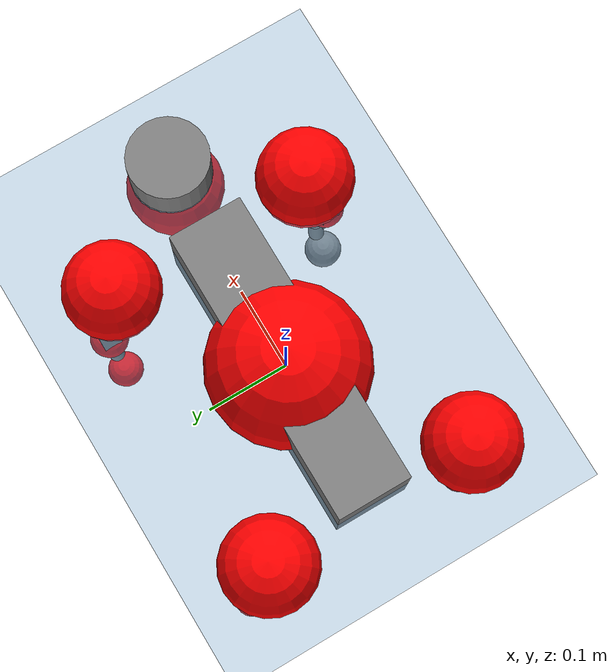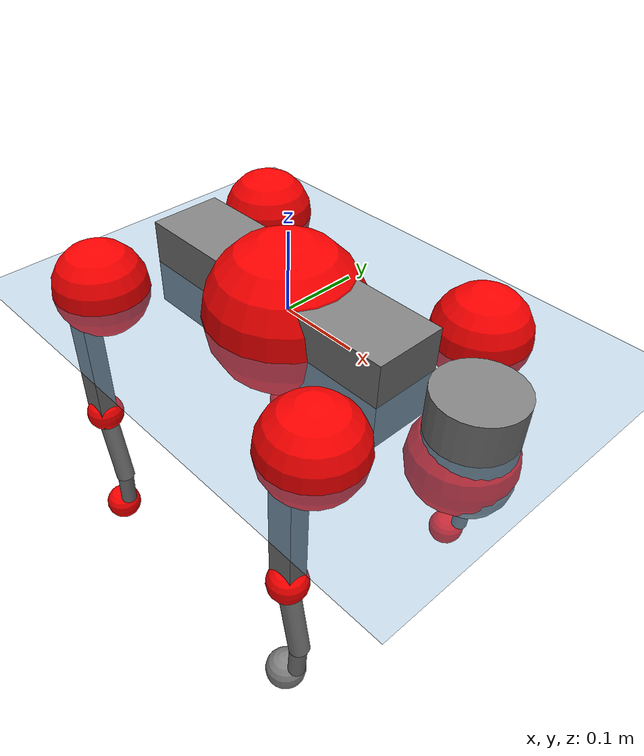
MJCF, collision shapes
<mujoco model="go2">
  <compiler angle="radian" assetdir="assets" balanceinertia="true" inertiafromgeom="false"/>

  <option timestep="0.005" density="1.2" viscosity="2e-05"/>

  <size nkey="1"/>

  <visual>
    <quality shadowsize="8192"/>
    <map shadowclip="0.5"/>
  </visual>

  <default>
    <default class="/">
      <geom contype="0" conaffinity="0" group="1" solref="-1000 -80"/>
      <site size="0.01 0.005 0.005" group="5"/>
      <general forcelimited="true" biastype="affine" gainprm="20" biasprm="0 -20 -0.5"/>
      <default class="go2">
        <joint armature="0.01" damping="0.01" frictionloss="0.2"/>
        <geom condim="1" margin="0.001"/>
        <default class="visual">
          <geom type="mesh" group="2"/>
        </default>
        <default class="collision">
          <geom group="3"/>
          <default class="foot">
            <geom size="0.022 0 0" condim="6" priority="1" friction="0.8 0.02 0.01" solimp="0.015 1 0.022"/>
          </default>
        </default>
        <default class="reward_collision_sphere">
          <geom group="5" rgba="1 0 0 1"/>
        </default>
      </default>
    </default>
  </default>

  <asset>
    <texture type="skybox" colorspace="auto" name="//unnamed_texture_0" builtin="gradient" rgb1="0.95 0.95 0.95" rgb2="0.95 0.95 0.95" width="100" height="600"/>
    <texture type="2d" colorspace="auto" name="texplane" builtin="checker" rgb1="0.345 0.575 0.748" rgb2="0.345 0.575 0.748" markrgb="1 1 1" width="512" height="512"/>
    <material name="MatPlane" class="/" texture="texplane" texuniform="true" texrepeat="2 2" specular="0.9"/>
    <material name="metal" class="/" rgba="0.9 0.95 0.95 1"/>
    <material name="black" class="/" rgba="0 0 0 1"/>
    <material name="white" class="/"/>
    <material name="gray" class="/" rgba="0.671705 0.692426 0.77427 1"/>
    <mesh name="base_0" class="/" file="base_0.obj"/>
    <mesh name="base_1" class="/" file="base_1.obj"/>
    <mesh name="base_2" class="/" file="base_2.obj"/>
    <mesh name="base_3" class="/" file="base_3.obj"/>
    <mesh name="base_4" class="/" file="base_4.obj"/>
    <mesh name="hip_0" class="/" file="hip_0.obj"/>
    <mesh name="hip_1" class="/" file="hip_1.obj"/>
    <mesh name="thigh_0" class="/" file="thigh_0.obj"/>
    <mesh name="thigh_1" class="/" file="thigh_1.obj"/>
    <mesh name="thigh_mirror_0" class="/" file="thigh_mirror_0.obj"/>
    <mesh name="thigh_mirror_1" class="/" file="thigh_mirror_1.obj"/>
    <mesh name="calf_0" class="/" file="calf_0.obj"/>
    <mesh name="calf_1" class="/" file="calf_1.obj"/>
    <mesh name="calf_mirror_0" class="/" file="calf_mirror_0.obj"/>
    <mesh name="calf_mirror_1" class="/" file="calf_mirror_1.obj"/>
    <mesh name="foot" class="/" file="foot.obj"/>
  </asset>

  <worldbody>
    <geom name="floor" class="/" size="100 100 0.125" type="plane" group="0" material="MatPlane"/>
    <light name="toplight_shadow" class="/" pos="0 0 5" dir="0.0990148 0.0990148 -0.990148" type="directional" ambient="0.04 0.04 0.04" diffuse="0.55 0.55 0.55" specular="0.12 0.12 0.12"/>
    <light name="toplight_fill" class="/" pos="0 0 5" dir="0.0990148 0.0990148 -0.990148" type="directional" castshadow="false" ambient="0.04 0.04 0.04" diffuse="0.3 0.3 0.3" specular="0.08 0.08 0.08"/>
    <body name="trunk" childclass="go2" pos="-0.000915858 -0.00270212 -0.00218126" quat="0.999999 0.00036915 0.00091287 -0.000536009">
      <inertial pos="0.019205 0.000769645 -0.00441165" quat="-0.00336258 0.715372 0.00810204 0.698689" mass="6.59598" diaginertia="0.0757547 0.178765 0.0122397"/>
      <joint name="//unnamed_joint_0" type="free" armature="0" damping="0" frictionloss="0"/>
      <geom name="//unnamed_geom_1" class="visual" material="black" mesh="base_0"/>
      <geom name="//unnamed_geom_2" class="visual" material="black" mesh="base_1"/>
      <geom name="//unnamed_geom_3" class="visual" material="black" mesh="base_2"/>
      <geom name="//unnamed_geom_4" class="visual" material="white" mesh="base_3"/>
      <geom name="//unnamed_geom_5" class="visual" material="gray" mesh="base_4"/>
      <geom name="trunk_1" class="collision" size="0.183783 0.0456771 0.0556918" type="box"/>
      <geom name="trunk_2" class="collision" size="0.0488525 0.0439672" pos="0.266583 0 0.00866255" type="cylinder"/>
      <geom name="trunk_3" class="collision" size="0.0459213" pos="0.274066 0 -0.0519753"/>
      <geom name="//unnamed_geom_9" class="reward_collision_sphere" size="0.097705"/>
      <geom name="//unnamed_geom_10" class="reward_collision_sphere" size="0.058623" pos="0.261906 0 -0.0389815"/>
      <site name="imu" pos="-0.0269092 0.00992633 0.0309174" size="0.0097705"/>
      <camera name="track" pos="0 -2.25903 0" quat="0.707107 0.707107 0 0" mode="trackcom"/>
      <camera name="ego_camera" pos="0.291838 0 0.0389815" quat="-0.5 -0.5 0.5 0.5"/>
      <body name="FL_hip" pos="0.177942 0.0497016 0.0031077" quat="1 -0.000335682 -0.000199501 0.000184493">
        <inertial pos="-0.00546818 -0.000257222 -0.00294071" quat="0.49391 0.499731 0.509048 0.497183" mass="0.651621" diaginertia="0.000649489 0.00110266 0.000247769"/>
        <joint name="FL_hip_joint" pos="0 0 0" axis="0.999955 -0.00936476 -0.00141681" range="-1.02908 1.01139" armature="0.0109728" damping="0" frictionloss="0.218636"/>
        <geom name="//unnamed_geom_11" class="visual" material="metal" mesh="hip_0"/>
        <geom name="//unnamed_geom_12" class="visual" material="gray" mesh="hip_1"/>
        <geom name="//unnamed_geom_13" class="collision" size="0.0449443 0.019541" pos="0 0.0903613 0" quat="0.707107 0.707107 0 0" type="cylinder"/>
        <geom name="//unnamed_geom_14" class="reward_collision_sphere" size="0.058623" pos="0 0.0790661 0"/>
        <body name="FL_thigh" pos="-0.00122919 0.107748 0.0031104" quat="1 -0.000486361 0.000130091 0.000276263">
          <inertial pos="-0.00262646 -0.0259328 -0.0266987" quat="0.8295 0.0857053 -0.0150234 0.551687" mass="1.06805" diaginertia="0.00433518 0.0109446 0.000419495"/>
          <joint name="FL_thigh_joint" pos="0 0 0" axis="0.00380685 0.99991 0.0128323" range="-1.61296 3.53858" armature="0.01102" damping="0.000902187" frictionloss="0.221488"/>
          <geom name="//unnamed_geom_15" class="visual" material="metal" mesh="thigh_0"/>
          <geom name="//unnamed_geom_16" class="visual" material="gray" mesh="thigh_1"/>
          <geom name="//unnamed_geom_17" class="collision" size="0.104056 0.0119689 0.0166098" pos="0 0 -0.0922562" quat="0.707107 0 0.707107 0" type="box"/>
          <body name="FL_calf" pos="-0.00100001 1.5677e-05 -0.184198" quat="0.999999 1.58525e-05 0.00132365 0.000413821">
            <inertial pos="0.00866313 0.00221923 -0.124917" quat="0.706716 0.00529974 -0.0100796 0.707406" mass="0.229221" diaginertia="0.00104736 0.00278907 2.50847e-05"/>
            <joint name="FL_calf_joint" pos="0 0 0" axis="-0.000645433 1 -0.000187155" stiffness="0.00188624" range="-2.70532 -0.879514" armature="0.0082712" damping="0.00710165" frictionloss="0.200684"/>
            <geom name="//unnamed_geom_18" class="visual" material="gray" mesh="calf_0"/>
            <geom name="//unnamed_geom_19" class="visual" material="black" mesh="calf_1"/>
            <geom name="FL_calf0" class="collision" size="0.0117246 0.058623" pos="0.00748303 0 -0.0519753" quat="0.994493 0 -0.104807 0" type="cylinder"/>
            <geom name="//unnamed_geom_21" class="collision" size="0.0107475 0.0317541" pos="0.0187076 0 -0.128206" quat="0.999688 0 0.0249974 0" type="cylinder"/>
            <geom name="//unnamed_geom_22" class="visual" pos="0 0 -0.184512" quat="1 0 0 0" material="black" mesh="foot"/>
            <geom name="FL_foot" class="foot" size="0.0211444" pos="-0.00187076 0 -0.184512"/>
            <geom name="//unnamed_geom_24" class="reward_collision_sphere" size="0.0244262"/>
            <geom name="//unnamed_geom_25" class="reward_collision_sphere" size="0.0244262" pos="-0.00187076 0 -0.184512"/>
            <site name="FL_foot" class="foot" pos="-0.00187076 0 -0.184512" size="0.0097705"/>
          </body>
        </body>
      </body>
      <body name="FR_hip" pos="0.181061 -0.0510365 0.00194003" quat="0.999999 -0.00085283 0.0006307 -0.000307297">
        <inertial pos="-0.00276965 -0.0011186 -0.000542788" quat="0.498899 0.503807 0.502675 0.494567" mass="0.650283" diaginertia="0.000657361 0.00112636 0.000233548"/>
        <joint name="FR_hip_joint" pos="0 0 0" axis="0.999986 0.000146231 -0.00531772" range="-0.993026 1.05446" armature="0.00951294" damping="0.00674266" frictionloss="0.203248"/>
        <geom name="//unnamed_geom_26" class="visual" pos="0 2.29342e-09 9.83697e-08" quat="4.63268e-05 1 0 0" material="metal" mesh="hip_0"/>
        <geom name="//unnamed_geom_27" class="visual" pos="0 3.71792e-09 -2.43306e-07" quat="4.63268e-05 1 0 0" material="gray" mesh="hip_1"/>
        <geom name="//unnamed_geom_28" class="collision" size="0.0449443 0.019541" pos="0 -0.0903613 0" quat="0.707107 0.707107 0 0" type="cylinder"/>
        <geom name="//unnamed_geom_29" class="reward_collision_sphere" size="0.058623" pos="0 -0.0790661 0"/>
        <body name="FR_thigh" pos="-0.000354773 -0.108924 0.00180656" quat="1 -0.000476542 -0.000491585 -0.000271256">
          <inertial pos="-0.00605764 0.0247654 -0.029545" quat="0.550475 -0.0217354 0.08324 0.830407" mass="1.04469" diaginertia="0.00417089 0.0101546 0.000406135"/>
          <joint name="FR_thigh_joint" pos="0 0 0" axis="0.0106614 -0.999929 0.00532715" stiffness="0.00279556" range="-3.5191 1.52445" armature="0.00958339" damping="0.013225" frictionloss="0.219013"/>
          <geom name="//unnamed_geom_30" class="visual" material="metal" mesh="thigh_mirror_0"/>
          <geom name="//unnamed_geom_31" class="visual" material="gray" mesh="thigh_mirror_1"/>
          <geom name="//unnamed_geom_32" class="collision" size="0.104056 0.0119689 0.0166098" pos="0 0 -0.0922562" quat="0.707107 0 0.707107 0" type="box"/>
          <body name="FR_calf" pos="0.00266928 -0.00213457 -0.183123" quat="1 4.67319e-05 -0.000198341 -1.36464e-05">
            <inertial pos="0.00861032 0.000624126 -0.124061" quat="0.703069 -0.00481039 0.00401737 0.711094" mass="0.23431" diaginertia="0.00112273 0.00267238 2.63224e-05"/>
            <joint name="FR_calf_joint" pos="0 0 0" axis="0.00370108 -0.999988 0.003295" range="0.844927 2.73729" armature="0.00927974" damping="0.0234768" frictionloss="0.204003"/>
            <geom name="//unnamed_geom_33" class="visual" material="gray" mesh="calf_mirror_0"/>
            <geom name="//unnamed_geom_34" class="visual" material="black" mesh="calf_mirror_1"/>
            <geom name="FR_calf0" class="collision" size="0.0127016 0.058623" pos="0.00935378 0 -0.0519753" quat="0.995004 0 -0.0998334 0" type="cylinder"/>
            <geom name="//unnamed_geom_36" class="collision" size="0.0107475 0.0317541" pos="0.0187076 0 -0.128206" quat="0.999688 0 0.0249974 0" type="cylinder"/>
            <geom name="//unnamed_geom_37" class="visual" pos="0 0 -0.184512" quat="1 0 0 0" material="black" mesh="foot"/>
            <geom name="FR_foot" class="foot" size="0.0254185" pos="-0.00187076 0 -0.184512"/>
            <geom name="//unnamed_geom_39" class="reward_collision_sphere" size="0.0244262"/>
            <geom name="//unnamed_geom_40" class="reward_collision_sphere" size="0.0244262" pos="-0.00187076 0 -0.184512"/>
            <site name="FR_foot" class="foot" pos="-0.00187076 0 -0.184512" size="0.0097705"/>
          </body>
        </body>
      </body>
      <body name="RL_hip" pos="-0.183118 0.0550208 0.00314778" quat="1 1.56007e-05 -0.000119933 -8.40635e-05">
        <inertial pos="0.00633939 0.00287308 -0.000587887" quat="0.505524 0.498755 0.497119 0.49856" mass="0.629407" diaginertia="0.000627132 0.00111802 0.000228538"/>
        <joint name="RL_hip_joint" pos="0 0 0" axis="-0.999693 0.00141865 -0.0247325" stiffness="0.0121331" range="-1.0487 1.03156" armature="0.00994722" damping="0.0129062" frictionloss="0.216039"/>
        <geom name="//unnamed_geom_41" class="visual" pos="-6.02173e-10 0 -1.1804e-07" quat="4.63268e-05 0 1 0" material="metal" mesh="hip_0"/>
        <geom name="//unnamed_geom_42" class="visual" pos="-9.76194e-10 0 -1.04684e-07" quat="4.63268e-05 0 1 0" material="gray" mesh="hip_1"/>
        <geom name="//unnamed_geom_43" class="collision" size="0.0449443 0.019541" pos="0 0.0903613 0" quat="0.707107 0.707107 0 0" type="cylinder"/>
        <geom name="//unnamed_geom_44" class="reward_collision_sphere" size="0.058623" pos="0 0.0790661 0"/>
        <body name="RL_thigh" pos="-0.000758539 0.110577 0.00250364" quat="1 0.000235547 0.000417056 5.42691e-05">
          <inertial pos="-0.00307631 -0.0247966 -0.0282735" quat="0.828114 0.0913386 -0.0259699 0.552458" mass="1.04632" diaginertia="0.00432668 0.0104156 0.000437827"/>
          <joint name="RL_thigh_joint" pos="0 0 0" axis="-0.00588951 0.99998 0.00208491" range="-0.511901 4.56778" armature="0.00855144" damping="0.0038028" frictionloss="0.177061"/>
          <geom name="//unnamed_geom_45" class="visual" material="metal" mesh="thigh_0"/>
          <geom name="//unnamed_geom_46" class="visual" material="gray" mesh="thigh_1"/>
          <geom name="//unnamed_geom_47" class="collision" size="0.104056 0.0119689 0.0166098" pos="0 0 -0.0922562" quat="0.707107 0 0.707107 0" type="box"/>
          <body name="RL_calf" pos="0.000928283 -0.000101758 -0.181106" quat="1 0.000167903 -0.000161833 0.000146078">
            <inertial pos="0.00567586 -0.000295641 -0.119698" quat="0.711182 0.00164273 -0.00431034 0.702993" mass="0.226845" diaginertia="0.0010651 0.00267733 2.63648e-05"/>
            <joint name="RL_calf_joint" pos="0 0 0" axis="-0.00141063 0.999984 -0.00540682" stiffness="0.000832631" range="-2.74492 -0.838463" armature="0.00868842" damping="0.00271467" frictionloss="0.200908"/>
            <geom name="//unnamed_geom_48" class="visual" material="gray" mesh="calf_0"/>
            <geom name="//unnamed_geom_49" class="visual" material="black" mesh="calf_1"/>
            <geom name="RL_calf0" class="collision" size="0.0127016 0.058623" pos="0.00935378 0 -0.0519753" quat="0.995004 0 -0.0998334 0" type="cylinder"/>
            <geom name="//unnamed_geom_51" class="collision" size="0.0107475 0.0317541" pos="0.0187076 0 -0.128206" quat="0.999688 0 0.0249974 0" type="cylinder"/>
            <geom name="//unnamed_geom_52" class="visual" pos="0 0 -0.184512" quat="1 0 0 0" material="black" mesh="foot"/>
            <geom name="RL_foot" class="foot" size="0.0218885" pos="-0.00187076 0 -0.184512"/>
            <geom name="//unnamed_geom_54" class="reward_collision_sphere" size="0.0244262"/>
            <geom name="//unnamed_geom_55" class="reward_collision_sphere" size="0.0244262" pos="-0.00187076 0 -0.184512"/>
            <site name="RL_foot" class="foot" pos="-0.00187076 0 -0.184512" size="0.0097705"/>
          </body>
        </body>
      </body>
      <body name="RR_hip" pos="-0.181351 -0.0526473 0.00212211" quat="0.999999 0.00040569 -0.00103934 0.00103485">
        <inertial pos="0.00510307 0.000134205 -0.000737449" quat="0.498736 0.500304 0.501415 0.499542" mass="0.633682" diaginertia="0.000657872 0.00113874 0.000228457"/>
        <joint name="RR_hip_joint" pos="0 0 0" axis="-0.999997 0.00134471 0.0018215" stiffness="0.00153524" range="-1.05003 1.04949" armature="0.0103429" damping="0.00903732" frictionloss="0.177391"/>
        <geom name="//unnamed_geom_56" class="visual" pos="6.08894e-10 2.29342e-09 -2.16409e-07" quat="2.14617e-09 4.63268e-05 4.63268e-05 -1" material="metal" mesh="hip_0"/>
        <geom name="//unnamed_geom_57" class="visual" pos="9.59569e-10 3.71792e-09 1.38622e-07" quat="2.14617e-09 4.63268e-05 4.63268e-05 -1" material="gray" mesh="hip_1"/>
        <geom name="//unnamed_geom_58" class="collision" size="0.0449443 0.019541" pos="0 -0.0903613 0" quat="0.707107 0.707107 0 0" type="cylinder"/>
        <geom name="//unnamed_geom_59" class="reward_collision_sphere" size="0.058623" pos="0 -0.0790661 0"/>
        <body name="RR_thigh" pos="-0.000731446 -0.109456 -0.00170686" quat="0.999999 -3.31019e-05 0.00102914 0.000592563">
          <inertial pos="-0.00355977 0.0227353 -0.0292098" quat="0.550786 -0.0211521 0.086837 0.829847" mass="1.01253" diaginertia="0.0040299 0.0104077 0.000409806"/>
          <joint name="RR_thigh_joint" pos="0 0 0" axis="-0.00175326 -0.999998 -0.00137612" range="-4.5668 0.580782" armature="0.0110759" damping="0.00931489" frictionloss="0.184796"/>
          <geom name="//unnamed_geom_60" class="visual" material="metal" mesh="thigh_mirror_0"/>
          <geom name="//unnamed_geom_61" class="visual" material="gray" mesh="thigh_mirror_1"/>
          <geom name="//unnamed_geom_62" class="collision" size="0.104056 0.0119689 0.0166098" pos="0 0 -0.0922562" quat="0.707107 0 0.707107 0" type="box"/>
          <body name="RR_calf" pos="8.7229e-05 0.00260246 -0.184296" quat="1 0.000217617 0.000229332 0.000224793">
            <inertial pos="0.00585753 3.37888e-05 -0.119877" quat="0.706145 -0.0132348 -0.00375095 0.707934" mass="0.224143" diaginertia="0.00109467 0.00257995 2.65879e-05"/>
            <joint name="RR_calf_joint" pos="0 0 0" axis="-0.00226241 -0.999934 0.0112542" stiffness="0.000961123" range="0.889718 2.72101" armature="0.00847246" damping="0.0127961" frictionloss="0.206486"/>
            <geom name="//unnamed_geom_63" class="visual" material="gray" mesh="calf_mirror_0"/>
            <geom name="//unnamed_geom_64" class="visual" material="black" mesh="calf_mirror_1"/>
            <geom name="RR_calf0" class="collision" size="0.0127016 0.058623" pos="0.00935378 0 -0.0519753" quat="0.995004 0 -0.0998334 0" type="cylinder"/>
            <geom name="//unnamed_geom_66" class="collision" size="0.0107475 0.0317541" pos="0.0187076 0 -0.128206" quat="0.999688 0 0.0249974 0" type="cylinder"/>
            <geom name="//unnamed_geom_67" class="visual" pos="0 0 -0.184512" quat="1 0 0 0" material="black" mesh="foot"/>
            <geom name="RR_foot" class="foot" size="0.0221215" pos="-0.00187076 0 -0.184512"/>
            <geom name="//unnamed_geom_69" class="reward_collision_sphere" size="0.0244262"/>
            <geom name="//unnamed_geom_70" class="reward_collision_sphere" size="0.0244262" pos="-0.00187076 0 -0.184512"/>
            <site name="RR_foot" class="foot" pos="-0.00187076 0 -0.184512" size="0.0097705"/>
          </body>
        </body>
      </body>
    </body>
  </worldbody>

  <contact>
    <pair class="/" geom1="floor" geom2="FL_foot" name="//unnamed_contact_0"/>
    <pair class="/" geom1="floor" geom2="FR_foot" name="//unnamed_contact_1"/>
    <pair class="/" geom1="floor" geom2="RL_foot" name="//unnamed_contact_2"/>
    <pair class="/" geom1="floor" geom2="RR_foot" name="//unnamed_contact_3"/>
  </contact>

  <actuator>
    <general name="FL_hip" class="/" joint="FL_hip_joint" forcerange="-24.0357 24.0357" gainprm="19.5923" biasprm="0 -19.5923 -0.487245"/>
    <general name="FL_thigh" class="/" joint="FL_thigh_joint" forcerange="-20.8165 20.8165" gainprm="19.5923" biasprm="0 -19.5923 -0.487245"/>
    <general name="FL_calf" class="/" joint="FL_calf_joint" forcerange="-44.6093 44.6093" gainprm="19.5923" biasprm="0 -19.5923 -0.487245"/>
    <general name="FR_hip" class="/" joint="FR_hip_joint" forcerange="-23.3231 23.3231" gainprm="19.5923" biasprm="0 -19.5923 -0.487245"/>
    <general name="FR_thigh" class="/" joint="FR_thigh_joint" forcerange="-23.1898 23.1898" gainprm="19.5923" biasprm="0 -19.5923 -0.487245"/>
    <general name="FR_calf" class="/" joint="FR_calf_joint" forcerange="-39.9511 39.9511" gainprm="19.5923" biasprm="0 -19.5923 -0.487245"/>
    <general name="RL_hip" class="/" joint="RL_hip_joint" forcerange="-23.8457 23.8457" gainprm="19.5923" biasprm="0 -19.5923 -0.487245"/>
    <general name="RL_thigh" class="/" joint="RL_thigh_joint" forcerange="-23.9457 23.9457" gainprm="19.5923" biasprm="0 -19.5923 -0.487245"/>
    <general name="RL_calf" class="/" joint="RL_calf_joint" forcerange="-42.6127 42.6127" gainprm="19.5923" biasprm="0 -19.5923 -0.487245"/>
    <general name="RR_hip" class="/" joint="RR_hip_joint" forcerange="-22.644 22.644" gainprm="19.5923" biasprm="0 -19.5923 -0.487245"/>
    <general name="RR_thigh" class="/" joint="RR_thigh_joint" forcerange="-21.8268 21.8268" gainprm="19.5923" biasprm="0 -19.5923 -0.487245"/>
    <general name="RR_calf" class="/" joint="RR_calf_joint" forcerange="-46.7107 46.7107" gainprm="19.5923" biasprm="0 -19.5923 -0.487245"/>
  </actuator>

  <sensor>
    <gyro site="imu" name="imu_angular_velocity"/>
    <velocimeter site="imu" name="imu_linear_velocity"/>
    <framelinvel objtype="site" objname="FL_foot" name="FL_foot_global_linear_velocity"/>
    <framelinvel objtype="site" objname="FR_foot" name="FR_foot_global_linear_velocity"/>
    <framelinvel objtype="site" objname="RL_foot" name="RL_foot_global_linear_velocity"/>
    <framelinvel objtype="site" objname="RR_foot" name="RR_foot_global_linear_velocity"/>
  </sensor>

  <keyframe>
    <key name="home" qpos="0 0 0.325 1 0 0 0 0.1 0.8 -1.5 -0.1 -0.8 1.5 -0.1 0.8 -1.5 0.1 -0.8 1.5"/>
  </keyframe>
</mujoco>
